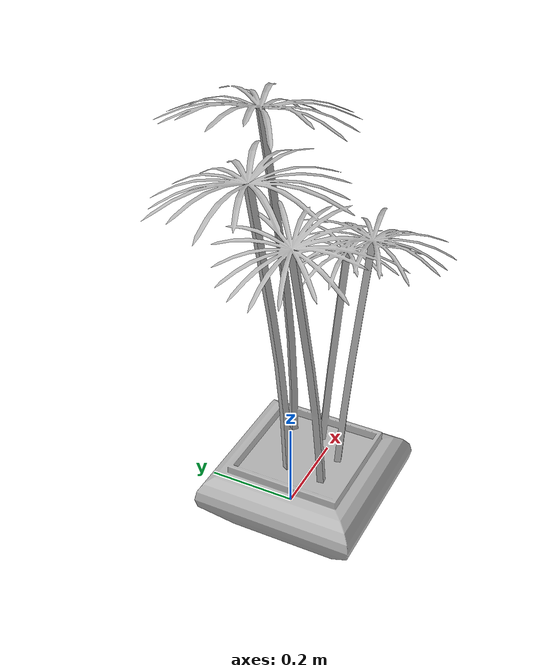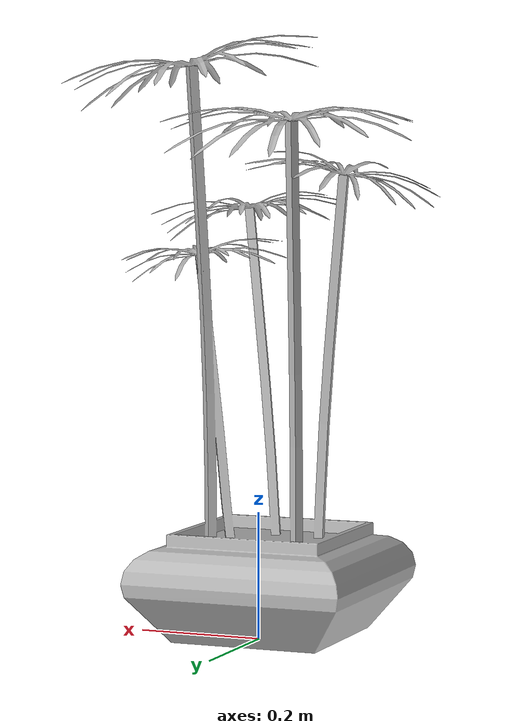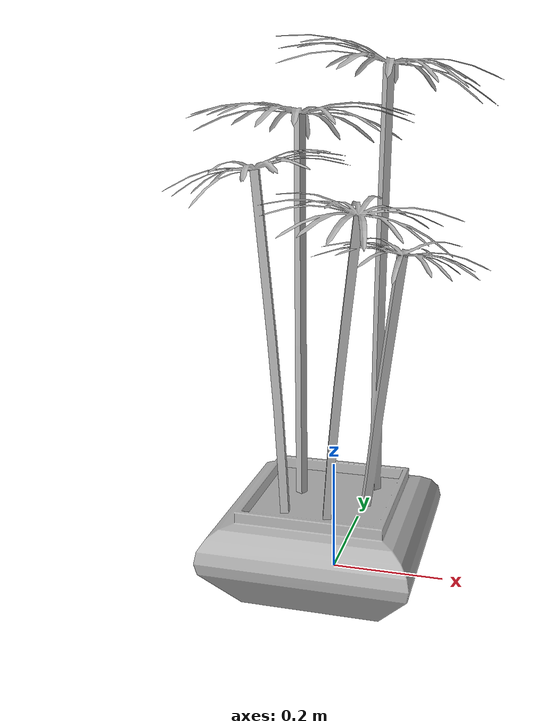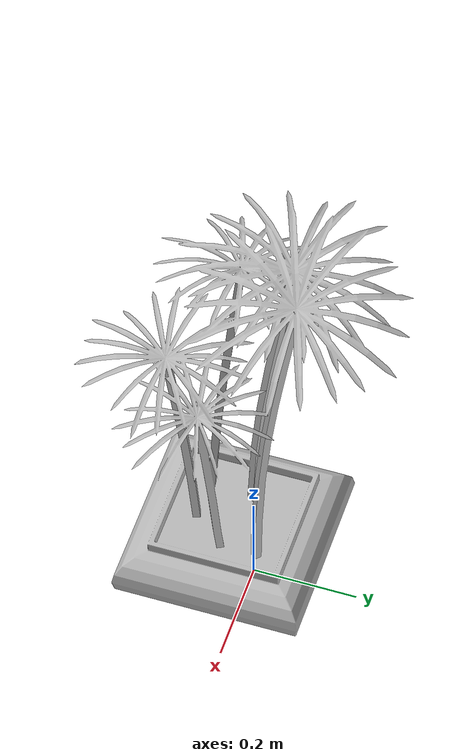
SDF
<?xml version='1.0'?>
<sdf version='1.4'>
  <model name='624'>
    <pose>0 0 0 0 0 0</pose>
    <static>true</static>
    <link name='link'>
      <collision name='collision'>
        <pose>0 0 0 0 0 0</pose>
        <geometry>
          <box>
            <size>0.539563 0.590072 2</size>
          </box>
        </geometry>
      </collision>
      <visual name='visual'>
        <pose>0 0 0 0 0 0</pose>
        <geometry>
          <mesh><uri>model://624/624.dae</uri></mesh>
        </geometry>
      </visual>
    </link>
  </model>
</sdf>
